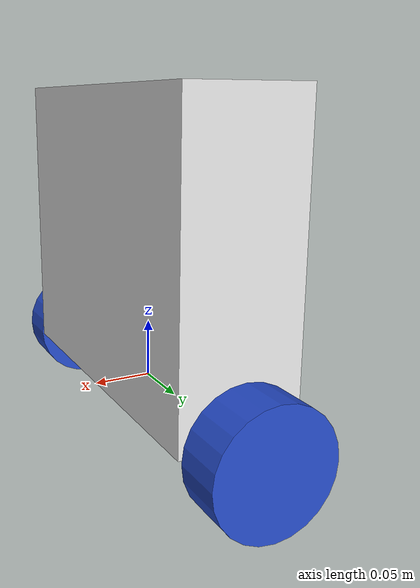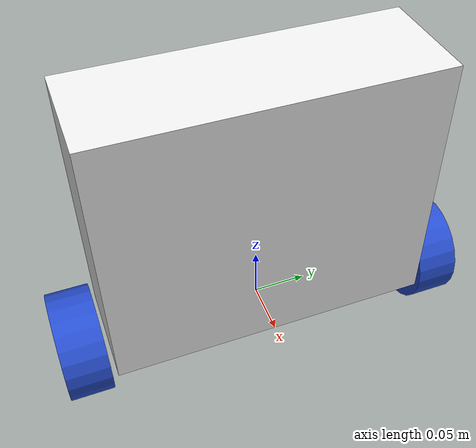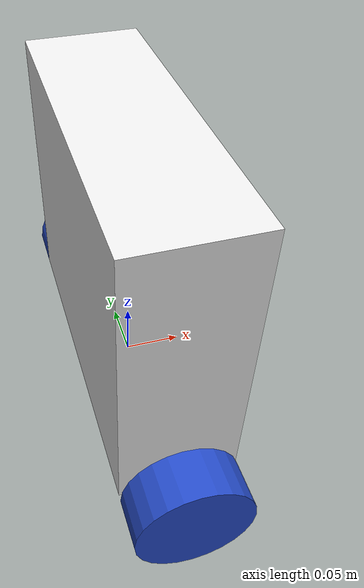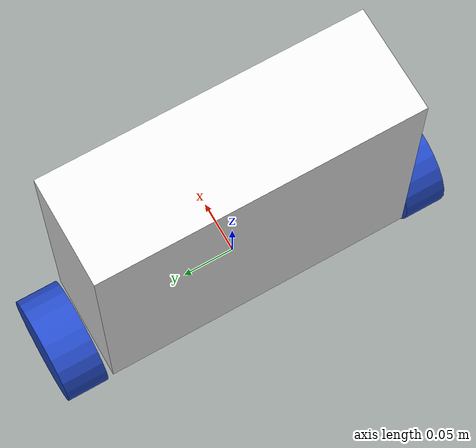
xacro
<?xml version="1.0"?>
<robot xmlns:xacro="http://www.ros.org/wiki/xacro">

    <!-- Example link -->
    <xacro:include filename="inertial_macros.xacro"/>

    <!-- Example link -->
    <link name="base_link">
    </link>

    <joint name="base_link" type="fixed">
        <parent link="base_link"/>
        <child link="chassis"/>
        <origin xyz="0 0 0.125"/>
    </joint>

    <!-- chassis link -->
    <link name="chassis">
        <visual>
            <origin xyz="0.0 0.0 0.0"/>
            <geometry>
                <box size="0.1 0.3 0.25"/>
            </geometry>
            <material name="white"/>
        </visual>
        <collision>
            <origin xyz="0.0 0.0 0.0"/>
            <geometry>
                <box size="0.1 0.3 0.25"/>
            </geometry>
        </collision>
        <xacro:inertial_box mass="0.1" x="0.1" y="0.3" z="0.25">
            <origin xyz="0.0 0.0 0.0" rpy="0 0 0"/>
        </xacro:inertial_box>
    </link>

    <!-- left wheel joint -->
    <joint name="left_wheel_joint" type="continuous">
        <parent link="base_link"/>
        <child link="left_wheel"/>
        <origin xyz="0 0.175 0" rpy="-${pi/2} 0 0"/>
        <axis xyz="0 0 1"/>
    </joint>

    <!-- left wheel link -->
    <link name="left_wheel">
        <visual>
            <geometry>
                <cylinder radius="0.05" length="0.04"/>
            </geometry>
            <material name="blue"/>
        </visual>
        <collision>
            <geometry>
                <cylinder radius="0.05" length="0.04"/>
            </geometry>
        </collision>
        <xacro:inertial_cylinder mass="0.1" length="0.04" radius="0.05">
            <origin xyz="0 0 0" rpy="0 0 0"/>
        </xacro:inertial_cylinder>
    </link>

    <!-- right wheel joint -->
    <joint name="right_wheel_joint" type="continuous">
        <parent link="base_link"/>
        <child link="right_wheel"/>
        <origin xyz="0 -0.175 0" rpy="${pi/2} 0 0"/>
        <axis xyz="0 0 -1"/>
    </joint>

    <!-- right wheel link -->
    <link name="right_wheel">
        <visual>
            <geometry>
                <cylinder radius="0.05" length="0.04"/>
            </geometry>
            <material name="blue"/>
        </visual>
        <collision>
            <geometry>
                <cylinder radius="0.05" length="0.04"/>
            </geometry>
        </collision>
        <xacro:inertial_cylinder mass="0.1" length="0.04" radius="0.05">
            <origin xyz="0 0 0" rpy="0 0 0"/>
        </xacro:inertial_cylinder>
    </link>

    <gazebo reference="chassis">
        <material>Gazebo/White</material>
    </gazebo>

    <gazebo reference="left_wheel">
        <material>Gazebo/Blue</material>
    </gazebo>

    <gazebo reference="right_wheel">
        <material>Gazebo/Blue</material>
    </gazebo>

</robot>
